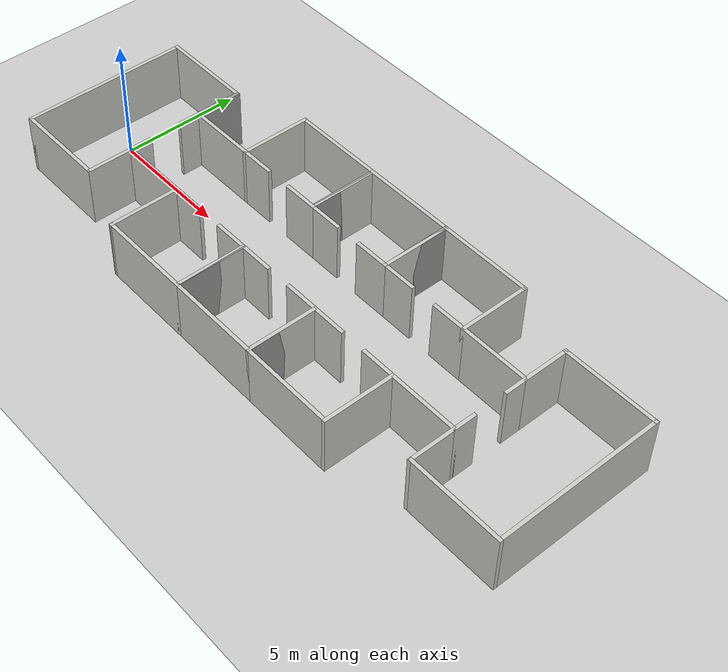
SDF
<sdf version="1.7">
 <world name="default">
  <light name="sun" type="directional">
   <pose>0 0 10 0 -0 0</pose>
   <diffuse>0.8 0.8 0.8 1</diffuse>
   <specular>0.2 0.2 0.2 1</specular>
   <attenuation>
    <range>1000</range>
    <constant>0.9</constant>
    <linear>0.01</linear>
    <quadratic>0.001</quadratic>
   </attenuation>
   <direction>-0.5 0.1 -0.9</direction>
   <spot><inner_angle>0</inner_angle><outer_angle>0</outer_angle><falloff>0</falloff></spot>
  </light>
  <model name="ground_plane">
   <static>1</static>
   <link name="link">
    <collision name="collision">
     <geometry><plane><normal>0 0 1</normal><size>100 100</size></plane></geometry>
     <surface>
      <contact><collide_bitmask>65535</collide_bitmask></contact>
      <friction><ode><mu>100</mu><mu2>50</mu2></ode></friction>
     </surface>
    </collision>
    <visual name="visual">
     <cast_shadows>0</cast_shadows>
     <geometry><plane><normal>0 0 1</normal><size>100 100</size></plane></geometry>
     <material>
      <script><uri>file://media/materials/scripts/gazebo.material</uri><name>Gazebo/Grey</name></script>
     </material>
    </visual>
   </link>
  </model>
  <gravity>0 0 -9.8</gravity>
  <magnetic_field>6e-06 2.3e-05 -4.2e-05</magnetic_field>
  <atmosphere type="adiabatic"/>
  <physics type="ode">
   <max_step_size>0.001</max_step_size>
   <real_time_factor>1</real_time_factor>
   <real_time_update_rate>1000</real_time_update_rate>
  </physics>
  <scene><ambient>0.4 0.4 0.4 1</ambient><background>0.7 0.7 0.7 1</background><shadows>1</shadows></scene>
  <spherical_coordinates>
   <surface_model>EARTH_WGS84</surface_model>
   <latitude_deg>0</latitude_deg>
   <longitude_deg>0</longitude_deg>
   <elevation>0</elevation>
   <heading_deg>0</heading_deg>
  </spherical_coordinates>
  <model name="FPSO_World_">
   <pose>10.9958 0.11858 0 0 -0 0</pose>
   <link name="Wall_10">
    <collision name="Wall_10_Collision">
     <geometry><box><size>4 0.15 2.5</size></box></geometry>
     <pose>0 0 1.25 0 -0 0</pose>
    </collision>
    <visual name="Wall_10_Visual">
     <pose>0 0 1.25 0 -0 0</pose>
     <geometry><box><size>4 0.15 2.5</size></box></geometry>
     <material>
      <script><uri>file://media/materials/scripts/gazebo.material</uri><name>Gazebo/CeilingTiled</name></script>
      <ambient>1 1 1 1</ambient>
     </material>
     <meta><layer>0</layer></meta>
    </visual>
    <pose>-10.55 -3.425 0 0 -0 0</pose>
   </link>
   <link name="Wall_11">
    <collision name="Wall_11_Collision">
     <geometry><box><size>2 0.15 2.5</size></box></geometry>
     <pose>0 0 1.25 0 -0 0</pose>
    </collision>
    <visual name="Wall_11_Visual">
     <pose>0 0 1.25 0 -0 0</pose>
     <geometry><box><size>2 0.15 2.5</size></box></geometry>
     <material>
      <script><uri>file://media/materials/scripts/gazebo.material</uri><name>Gazebo/CeilingTiled</name></script>
      <ambient>1 1 1 1</ambient>
     </material>
     <meta><layer>0</layer></meta>
    </visual>
    <pose>-8.625 -2.5 0 0 -0 1.5708</pose>
   </link>
   <link name="Wall_13">
    <collision name="Wall_13_Collision">
     <geometry><box><size>2 0.15 2.5</size></box></geometry>
     <pose>0 0 1.25 0 -0 0</pose>
    </collision>
    <visual name="Wall_13_Visual">
     <pose>0 0 1.25 0 -0 0</pose>
     <geometry><box><size>2 0.15 2.5</size></box></geometry>
     <material>
      <script><uri>file://media/materials/scripts/gazebo.material</uri><name>Gazebo/Grey</name></script>
      <ambient>1 1 1 1</ambient>
     </material>
     <meta><layer>0</layer></meta>
    </visual>
    <pose>-8.625 2.5 0 0 -0 -1.5708</pose>
   </link>
   <link name="Wall_14">
    <collision name="Wall_14_Collision">
     <geometry><box><size>3.00007 0.15 2.5</size></box></geometry>
     <pose>0 0 1.25 0 -0 0</pose>
    </collision>
    <visual name="Wall_14_Visual">
     <pose>0 0 1.25 0 -0 0</pose>
     <geometry><box><size>3.00007 0.15 2.5</size></box></geometry>
     <material>
      <script><uri>file://media/materials/scripts/gazebo.material</uri><name>Gazebo/CeilingTiled</name></script>
      <ambient>1 1 1 1</ambient>
     </material>
     <meta><layer>0</layer></meta>
    </visual>
    <pose>-7.2 1.575 0 0 -0 0</pose>
   </link>
   <link name="Wall_16">
    <collision name="Wall_16_Collision">
     <geometry><box><size>3 0.15 2.5</size></box></geometry>
     <pose>0 0 1.25 0 -0 0</pose>
    </collision>
    <visual name="Wall_16_Visual">
     <pose>0 0 1.25 0 -0 0</pose>
     <geometry><box><size>3 0.15 2.5</size></box></geometry>
     <material>
      <script><uri>file://media/materials/scripts/gazebo.material</uri><name>Gazebo/CeilingTiled</name></script>
      <ambient>1 1 1 1</ambient>
     </material>
     <meta><layer>0</layer></meta>
    </visual>
    <pose>-5.775 3 0 0 -0 1.5708</pose>
   </link>
   <link name="Wall_17">
    <collision name="Wall_17_Collision">
     <geometry><box><size>4 0.15 2.5</size></box></geometry>
     <pose>0 0 1.25 0 -0 0</pose>
    </collision>
    <visual name="Wall_17_Visual">
     <pose>0 0 1.25 0 -0 0</pose>
     <geometry><box><size>4 0.15 2.5</size></box></geometry>
     <material>
      <script><uri>file://media/materials/scripts/gazebo.material</uri><name>Gazebo/CeilingTiled</name></script>
      <ambient>1 1 1 1</ambient>
     </material>
     <meta><layer>0</layer></meta>
    </visual>
    <pose>-3.85 4.425 0 0 -0 0</pose>
   </link>
   <link name="Wall_18">
    <collision name="Wall_18_Collision">
     <geometry><box><size>3 0.15 2.5</size></box></geometry>
     <pose>0 0 1.25 0 -0 0</pose>
    </collision>
    <visual name="Wall_18_Visual">
     <pose>0 0 1.25 0 -0 0</pose>
     <geometry><box><size>3 0.15 2.5</size></box></geometry>
     <material>
      <script><uri>file://media/materials/scripts/gazebo.material</uri><name>Gazebo/CeilingTiled</name></script>
      <ambient>1 1 1 1</ambient>
     </material>
     <meta><layer>0</layer></meta>
    </visual>
    <pose>-1.925 3 0 0 -0 -1.5708</pose>
   </link>
   <link name="Wall_19">
    <collision name="Wall_19_Collision">
     <geometry><box><size>3 0.15 2.5</size></box></geometry>
     <pose>0 0 1.25 0 -0 0</pose>
    </collision>
    <visual name="Wall_19_Visual">
     <pose>0 0 1.25 0 -0 0</pose>
     <geometry><box><size>3 0.15 2.5</size></box></geometry>
     <material>
      <script><uri>file://media/materials/scripts/gazebo.material</uri><name>Gazebo/Grey</name></script>
      <ambient>1 1 1 1</ambient>
     </material>
     <meta><layer>0</layer></meta>
    </visual>
    <pose>-1.925 3 0 0 -0 1.5708</pose>
   </link>
   <link name="Wall_2">
    <collision name="Wall_2_Collision">
     <geometry><box><size>7 0.15 2.5</size></box></geometry>
     <pose>0 0 1.25 0 -0 0</pose>
    </collision>
    <visual name="Wall_2_Visual">
     <pose>0 0 1.25 0 -0 0</pose>
     <geometry><box><size>7 0.15 2.5</size></box></geometry>
     <material>
      <script><uri>file://media/materials/scripts/gazebo.material</uri><name>Gazebo/CeilingTiled</name></script>
      <ambient>1 1 1 1</ambient>
     </material>
     <meta><layer>0</layer></meta>
    </visual>
    <pose>-12.475 0 0 0 -0 1.5708</pose>
   </link>
   <link name="Wall_20">
    <collision name="Wall_20_Collision">
     <geometry><box><size>4 0.15 2.5</size></box></geometry>
     <pose>0 0 1.25 0 -0 0</pose>
    </collision>
    <visual name="Wall_20_Visual">
     <pose>0 0 1.25 0 -0 0</pose>
     <geometry><box><size>4 0.15 2.5</size></box></geometry>
     <material>
      <script><uri>file://media/materials/scripts/gazebo.material</uri><name>Gazebo/CeilingTiled</name></script>
      <ambient>1 1 1 1</ambient>
     </material>
     <meta><layer>0</layer></meta>
    </visual>
    <pose>0 4.425 0 0 -0 0</pose>
   </link>
   <link name="Wall_21">
    <collision name="Wall_21_Collision">
     <geometry><box><size>3 0.15 2.5</size></box></geometry>
     <pose>0 0 1.25 0 -0 0</pose>
    </collision>
    <visual name="Wall_21_Visual">
     <pose>0 0 1.25 0 -0 0</pose>
     <geometry><box><size>3 0.15 2.5</size></box></geometry>
     <material>
      <script><uri>file://media/materials/scripts/gazebo.material</uri><name>Gazebo/Grey</name></script>
      <ambient>1 1 1 1</ambient>
     </material>
     <meta><layer>0</layer></meta>
    </visual>
    <pose>1.925 3 0 0 -0 -1.5708</pose>
   </link>
   <link name="Wall_22">
    <collision name="Wall_22_Collision">
     <geometry><box><size>3 0.15 2.5</size></box></geometry>
     <pose>0 0 1.25 0 -0 0</pose>
    </collision>
    <visual name="Wall_22_Visual">
     <pose>0 0 1.25 0 -0 0</pose>
     <geometry><box><size>3 0.15 2.5</size></box></geometry>
     <material>
      <script><uri>file://media/materials/scripts/gazebo.material</uri><name>Gazebo/CeilingTiled</name></script>
      <ambient>1 1 1 1</ambient>
     </material>
     <meta><layer>0</layer></meta>
    </visual>
    <pose>1.925 3 0 0 -0 1.5708</pose>
   </link>
   <link name="Wall_23">
    <collision name="Wall_23_Collision">
     <geometry><box><size>4 0.15 2.5</size></box></geometry>
     <pose>0 0 1.25 0 -0 0</pose>
    </collision>
    <visual name="Wall_23_Visual">
     <pose>0 0 1.25 0 -0 0</pose>
     <geometry><box><size>4 0.15 2.5</size></box></geometry>
     <material>
      <script><uri>file://media/materials/scripts/gazebo.material</uri><name>Gazebo/CeilingTiled</name></script>
      <ambient>1 1 1 1</ambient>
     </material>
     <meta><layer>0</layer></meta>
    </visual>
    <pose>3.85 4.425 0 0 -0 0</pose>
   </link>
   <link name="Wall_24">
    <collision name="Wall_24_Collision">
     <geometry><box><size>3 0.15 2.5</size></box></geometry>
     <pose>0 0 1.25 0 -0 0</pose>
    </collision>
    <visual name="Wall_24_Visual">
     <pose>0 0 1.25 0 -0 0</pose>
     <geometry><box><size>3 0.15 2.5</size></box></geometry>
     <material>
      <script><uri>file://media/materials/scripts/gazebo.material</uri><name>Gazebo/CeilingTiled</name></script>
      <ambient>1 1 1 1</ambient>
     </material>
     <meta><layer>0</layer></meta>
    </visual>
    <pose>5.775 3 0 0 -0 -1.5708</pose>
   </link>
   <link name="Wall_26">
    <collision name="Wall_26_Collision">
     <geometry><box><size>3 0.15 2.5</size></box></geometry>
     <pose>0 0 1.25 0 -0 0</pose>
    </collision>
    <visual name="Wall_26_Visual">
     <pose>0 0 1.25 0 -0 0</pose>
     <geometry><box><size>3 0.15 2.5</size></box></geometry>
     <material>
      <script><uri>file://media/materials/scripts/gazebo.material</uri><name>Gazebo/CeilingTiled</name></script>
      <ambient>1 1 1 1</ambient>
     </material>
     <meta><layer>0</layer></meta>
    </visual>
    <pose>-7.2 -1.575 0 0 -0 0</pose>
   </link>
   <link name="Wall_27">
    <collision name="Wall_27_Collision">
     <geometry><box><size>3 0.15 2.5</size></box></geometry>
     <pose>0 0 1.25 0 -0 0</pose>
    </collision>
    <visual name="Wall_27_Visual">
     <pose>0 0 1.25 0 -0 0</pose>
     <geometry><box><size>3 0.15 2.5</size></box></geometry>
     <material>
      <script><uri>file://media/materials/scripts/gazebo.material</uri><name>Gazebo/CeilingTiled</name></script>
      <ambient>1 1 1 1</ambient>
     </material>
     <meta><layer>0</layer></meta>
    </visual>
    <pose>-5.775 -3 0 0 -0 -1.5708</pose>
   </link>
   <link name="Wall_28">
    <collision name="Wall_28_Collision">
     <geometry><box><size>4 0.15 2.5</size></box></geometry>
     <pose>0 0 1.25 0 -0 0</pose>
    </collision>
    <visual name="Wall_28_Visual">
     <pose>0 0 1.25 0 -0 0</pose>
     <geometry><box><size>4 0.15 2.5</size></box></geometry>
     <material>
      <script><uri>file://media/materials/scripts/gazebo.material</uri><name>Gazebo/CeilingTiled</name></script>
      <ambient>1 1 1 1</ambient>
     </material>
     <meta><layer>0</layer></meta>
    </visual>
    <pose>-3.85 -4.425 0 0 -0 0</pose>
   </link>
   <link name="Wall_29">
    <collision name="Wall_29_Collision">
     <geometry><box><size>3 0.15 2.5</size></box></geometry>
     <pose>0 0 1.25 0 -0 0</pose>
    </collision>
    <visual name="Wall_29_Visual">
     <pose>0 0 1.25 0 -0 0</pose>
     <geometry><box><size>3 0.15 2.5</size></box></geometry>
     <material>
      <script><uri>file://media/materials/scripts/gazebo.material</uri><name>Gazebo/Grey</name></script>
      <ambient>1 1 1 1</ambient>
     </material>
     <meta><layer>0</layer></meta>
    </visual>
    <pose>-1.925 -3 0 0 -0 1.5708</pose>
   </link>
   <link name="Wall_3">
    <collision name="Wall_3_Collision">
     <geometry><box><size>4 0.15 2.5</size></box></geometry>
     <pose>0 0 1.25 0 -0 0</pose>
    </collision>
    <visual name="Wall_3_Visual">
     <pose>0 0 1.25 0 -0 0</pose>
     <geometry><box><size>4 0.15 2.5</size></box></geometry>
     <material>
      <script><uri>file://media/materials/scripts/gazebo.material</uri><name>Gazebo/CeilingTiled</name></script>
      <ambient>1 1 1 1</ambient>
     </material>
     <meta><layer>0</layer></meta>
    </visual>
    <pose>-10.55 3.425 0 0 -0 0</pose>
   </link>
   <link name="Wall_31">
    <collision name="Wall_31_Collision">
     <geometry><box><size>3 0.15 2.5</size></box></geometry>
     <pose>0 0 1.25 0 -0 0</pose>
    </collision>
    <visual name="Wall_31_Visual">
     <pose>0 0 1.25 0 -0 0</pose>
     <geometry><box><size>3 0.15 2.5</size></box></geometry>
     <material>
      <script><uri>file://media/materials/scripts/gazebo.material</uri><name>Gazebo/CeilingTiled</name></script>
      <ambient>1 1 1 1</ambient>
     </material>
     <meta><layer>0</layer></meta>
    </visual>
    <pose>-1.925 -3 0 0 -0 -1.5708</pose>
   </link>
   <link name="Wall_32">
    <collision name="Wall_32_Collision">
     <geometry><box><size>4 0.15 2.5</size></box></geometry>
     <pose>0 0 1.25 0 -0 0</pose>
    </collision>
    <visual name="Wall_32_Visual">
     <pose>0 0 1.25 0 -0 0</pose>
     <geometry><box><size>4 0.15 2.5</size></box></geometry>
     <material>
      <script><uri>file://media/materials/scripts/gazebo.material</uri><name>Gazebo/CeilingTiled</name></script>
      <ambient>1 1 1 1</ambient>
     </material>
     <meta><layer>0</layer></meta>
    </visual>
    <pose>0 -4.425 0 0 -0 0</pose>
   </link>
   <link name="Wall_33">
    <collision name="Wall_33_Collision">
     <geometry><box><size>3 0.15 2.5</size></box></geometry>
     <pose>0 0 1.25 0 -0 0</pose>
    </collision>
    <visual name="Wall_33_Visual">
     <pose>0 0 1.25 0 -0 0</pose>
     <geometry><box><size>3 0.15 2.5</size></box></geometry>
     <material>
      <script><uri>file://media/materials/scripts/gazebo.material</uri><name>Gazebo/Grey</name></script>
      <ambient>1 1 1 1</ambient>
     </material>
     <meta><layer>0</layer></meta>
    </visual>
    <pose>1.925 -3 0 0 -0 1.5708</pose>
   </link>
   <link name="Wall_34">
    <collision name="Wall_34_Collision">
     <geometry><box><size>3 0.15 2.5</size></box></geometry>
     <pose>0 0 1.25 0 -0 0</pose>
    </collision>
    <visual name="Wall_34_Visual">
     <pose>0 0 1.25 0 -0 0</pose>
     <geometry><box><size>3 0.15 2.5</size></box></geometry>
     <material>
      <script><uri>file://media/materials/scripts/gazebo.material</uri><name>Gazebo/CeilingTiled</name></script>
      <ambient>1 1 1 1</ambient>
     </material>
     <meta><layer>0</layer></meta>
    </visual>
    <pose>1.925 -3 0 0 -0 -1.5708</pose>
   </link>
   <link name="Wall_35">
    <collision name="Wall_35_Collision">
     <geometry><box><size>4 0.15 2.5</size></box></geometry>
     <pose>0 0 1.25 0 -0 0</pose>
    </collision>
    <visual name="Wall_35_Visual">
     <pose>0 0 1.25 0 -0 0</pose>
     <geometry><box><size>4 0.15 2.5</size></box></geometry>
     <material>
      <script><uri>file://media/materials/scripts/gazebo.material</uri><name>Gazebo/CeilingTiled</name></script>
      <ambient>1 1 1 1</ambient>
     </material>
     <meta><layer>0</layer></meta>
    </visual>
    <pose>3.85 -4.425 0 0 -0 0</pose>
   </link>
   <link name="Wall_36">
    <collision name="Wall_36_Collision">
     <geometry><box><size>3 0.15 2.5</size></box></geometry>
     <pose>0 0 1.25 0 -0 0</pose>
    </collision>
    <visual name="Wall_36_Visual">
     <pose>0 0 1.25 0 -0 0</pose>
     <geometry><box><size>3 0.15 2.5</size></box></geometry>
     <material>
      <script><uri>file://media/materials/scripts/gazebo.material</uri><name>Gazebo/CeilingTiled</name></script>
      <ambient>1 1 1 1</ambient>
     </material>
     <meta><layer>0</layer></meta>
    </visual>
    <pose>5.775 -3 0 0 -0 1.5708</pose>
   </link>
   <link name="Wall_39">
    <collision name="Wall_39_Collision">
     <geometry><box><size>3 0.15 2.5</size></box></geometry>
     <pose>0 0 1.25 0 -0 0</pose>
    </collision>
    <visual name="Wall_39_Visual">
     <pose>0 0 1.25 0 -0 0</pose>
     <geometry><box><size>3 0.15 2.5</size></box></geometry>
     <material>
      <script><uri>file://media/materials/scripts/gazebo.material</uri><name>Gazebo/CeilingTiled</name></script>
      <ambient>1 1 1 1</ambient>
     </material>
     <meta><layer>0</layer></meta>
    </visual>
    <pose>7.2 1.575 0 0 -0 0</pose>
   </link>
   <link name="Wall_41">
    <collision name="Wall_41_Collision">
     <geometry><box><size>2 0.15 2.5</size></box></geometry>
     <pose>0 0 1.25 0 -0 0</pose>
    </collision>
    <visual name="Wall_41_Visual">
     <pose>0 0 1.25 0 -0 0</pose>
     <geometry><box><size>2 0.15 2.5</size></box></geometry>
     <material>
      <script><uri>file://media/materials/scripts/gazebo.material</uri><name>Gazebo/CeilingTiled</name></script>
      <ambient>1 1 1 1</ambient>
     </material>
     <meta><layer>0</layer></meta>
    </visual>
    <pose>8.625 2.5 0 0 -0 1.5708</pose>
   </link>
   <link name="Wall_43">
    <collision name="Wall_43_Collision">
     <geometry><box><size>4 0.15 2.5</size></box></geometry>
     <pose>0 0 1.25 0 -0 0</pose>
    </collision>
    <visual name="Wall_43_Visual">
     <pose>0 0 1.25 0 -0 0</pose>
     <geometry><box><size>4 0.15 2.5</size></box></geometry>
     <material>
      <script><uri>file://media/materials/scripts/gazebo.material</uri><name>Gazebo/CeilingTiled</name></script>
      <ambient>1 1 1 1</ambient>
     </material>
     <meta><layer>0</layer></meta>
    </visual>
    <pose>10.55 3.425 0 0 -0 0</pose>
   </link>
   <link name="Wall_44">
    <collision name="Wall_44_Collision">
     <geometry><box><size>7 0.15 2.5</size></box></geometry>
     <pose>0 0 1.25 0 -0 0</pose>
    </collision>
    <visual name="Wall_44_Visual">
     <pose>0 0 1.25 0 -0 0</pose>
     <geometry><box><size>7 0.15 2.5</size></box></geometry>
     <material>
      <script><uri>file://media/materials/scripts/gazebo.material</uri><name>Gazebo/CeilingTiled</name></script>
      <ambient>1 1 1 1</ambient>
     </material>
     <meta><layer>0</layer></meta>
    </visual>
    <pose>12.475 0 0 0 -0 -1.5708</pose>
   </link>
   <link name="Wall_45">
    <collision name="Wall_45_Collision">
     <geometry><box><size>4 0.15 2.5</size></box></geometry>
     <pose>0 0 1.25 0 -0 0</pose>
    </collision>
    <visual name="Wall_45_Visual">
     <pose>0 0 1.25 0 -0 0</pose>
     <geometry><box><size>4 0.15 2.5</size></box></geometry>
     <material>
      <script><uri>file://media/materials/scripts/gazebo.material</uri><name>Gazebo/CeilingTiled</name></script>
      <ambient>1 1 1 1</ambient>
     </material>
     <meta><layer>0</layer></meta>
    </visual>
    <pose>10.55 -3.425 0 0 -0 3.14159</pose>
   </link>
   <link name="Wall_46">
    <collision name="Wall_46_Collision">
     <geometry><box><size>2 0.15 2.5</size></box></geometry>
     <pose>0 0 1.25 0 -0 0</pose>
    </collision>
    <visual name="Wall_46_Visual">
     <pose>0 0 1.25 0 -0 0</pose>
     <geometry><box><size>2 0.15 2.5</size></box></geometry>
     <material>
      <script><uri>file://media/materials/scripts/gazebo.material</uri><name>Gazebo/CeilingTiled</name></script>
      <ambient>1 1 1 1</ambient>
     </material>
     <meta><layer>0</layer></meta>
    </visual>
    <pose>8.625 -2.5 0 0 -0 1.5708</pose>
   </link>
   <link name="Wall_47">
    <collision name="Wall_47_Collision">
     <geometry><box><size>3 0.15 2.5</size></box></geometry>
     <pose>0 0 1.25 0 -0 0</pose>
    </collision>
    <visual name="Wall_47_Visual">
     <pose>0 0 1.25 0 -0 0</pose>
     <geometry><box><size>3 0.15 2.5</size></box></geometry>
     <material>
      <script><uri>file://media/materials/scripts/gazebo.material</uri><name>Gazebo/CeilingTiled</name></script>
      <ambient>1 1 1 1</ambient>
     </material>
     <meta><layer>0</layer></meta>
    </visual>
    <pose>7.2 -1.575 0 0 -0 3.14159</pose>
   </link>
   <link name="Wall_49">
    <collision name="Wall_49_Collision">
     <geometry><box><size>1.5 0.15 2.5</size></box></geometry>
     <pose>0 0 1.25 0 -0 0</pose>
    </collision>
    <visual name="Wall_49_Visual">
     <pose>0 0 1.25 0 -0 0</pose>
     <geometry><box><size>1.5 0.15 2.5</size></box></geometry>
     <material>
      <script><uri>file://media/materials/scripts/gazebo.material</uri><name>Gazebo/CeilingTiled</name></script>
      <ambient>1 1 1 1</ambient>
     </material>
     <meta><layer>0</layer></meta>
    </visual>
    <pose>-5.1 1.575 0 0 -0 0</pose>
   </link>
   <link name="Wall_52">
    <collision name="Wall_52_Collision">
     <geometry><box><size>1.5 0.15 2.5</size></box></geometry>
     <pose>0 0 1.25 0 -0 0</pose>
    </collision>
    <visual name="Wall_52_Visual">
     <pose>0 0 1.25 0 -0 0</pose>
     <geometry><box><size>1.5 0.15 2.5</size></box></geometry>
     <material>
      <script><uri>file://media/materials/scripts/gazebo.material</uri><name>Gazebo/CeilingTiled</name></script>
      <ambient>1 1 1 1</ambient>
     </material>
     <meta><layer>0</layer></meta>
    </visual>
    <pose>-2.6 1.575 0 0 -0 3.14159</pose>
   </link>
   <link name="Wall_54">
    <collision name="Wall_54_Collision">
     <geometry><box><size>1.5 0.15 2.5</size></box></geometry>
     <pose>0 0 1.25 0 -0 0</pose>
    </collision>
    <visual name="Wall_54_Visual">
     <pose>0 0 1.25 0 -0 0</pose>
     <geometry><box><size>1.5 0.15 2.5</size></box></geometry>
     <material>
      <script><uri>file://media/materials/scripts/gazebo.material</uri><name>Gazebo/CeilingTiled</name></script>
      <ambient>1 1 1 1</ambient>
     </material>
     <meta><layer>0</layer></meta>
    </visual>
    <pose>-5.1 -1.575 0 0 -0 0</pose>
   </link>
   <link name="Wall_56">
    <collision name="Wall_56_Collision">
     <geometry><box><size>1.5 0.15 2.5</size></box></geometry>
     <pose>0 0 1.25 0 -0 0</pose>
    </collision>
    <visual name="Wall_56_Visual">
     <pose>0 0 1.25 0 -0 0</pose>
     <geometry><box><size>1.5 0.15 2.5</size></box></geometry>
     <material>
      <script><uri>file://media/materials/scripts/gazebo.material</uri><name>Gazebo/CeilingTiled</name></script>
      <ambient>1 1 1 1</ambient>
     </material>
     <meta><layer>0</layer></meta>
    </visual>
    <pose>-2.6 -1.575 0 0 -0 3.14159</pose>
   </link>
   <link name="Wall_58">
    <collision name="Wall_58_Collision">
     <geometry><box><size>1.5 0.15 2.5</size></box></geometry>
     <pose>0 0 1.25 0 -0 0</pose>
    </collision>
    <visual name="Wall_58_Visual">
     <pose>0 0 1.25 0 -0 0</pose>
     <geometry><box><size>1.5 0.15 2.5</size></box></geometry>
     <material>
      <script><uri>file://media/materials/scripts/gazebo.material</uri><name>Gazebo/CeilingTiled</name></script>
      <ambient>1 1 1 1</ambient>
     </material>
     <meta><layer>0</layer></meta>
    </visual>
    <pose>-1.25 1.575 0 0 -0 0</pose>
   </link>
   <link name="Wall_60">
    <collision name="Wall_60_Collision">
     <geometry><box><size>1.5 0.15 2.5</size></box></geometry>
     <pose>0 0 1.25 0 -0 0</pose>
    </collision>
    <visual name="Wall_60_Visual">
     <pose>0 0 1.25 0 -0 0</pose>
     <geometry><box><size>1.5 0.15 2.5</size></box></geometry>
     <material>
      <script><uri>file://media/materials/scripts/gazebo.material</uri><name>Gazebo/CeilingTiled</name></script>
      <ambient>1 1 1 1</ambient>
     </material>
     <meta><layer>0</layer></meta>
    </visual>
    <pose>1.25 1.575 0 0 -0 3.14159</pose>
   </link>
   <link name="Wall_62">
    <collision name="Wall_62_Collision">
     <geometry><box><size>1.5 0.15 2.5</size></box></geometry>
     <pose>0 0 1.25 0 -0 0</pose>
    </collision>
    <visual name="Wall_62_Visual">
     <pose>0 0 1.25 0 -0 0</pose>
     <geometry><box><size>1.5 0.15 2.5</size></box></geometry>
     <material>
      <script><uri>file://media/materials/scripts/gazebo.material</uri><name>Gazebo/CeilingTiled</name></script>
      <ambient>1 1 1 1</ambient>
     </material>
     <meta><layer>0</layer></meta>
    </visual>
    <pose>-1.25 -1.575 0 0 -0 0</pose>
   </link>
   <link name="Wall_64">
    <collision name="Wall_64_Collision">
     <geometry><box><size>1.5 0.15 2.5</size></box></geometry>
     <pose>0 0 1.25 0 -0 0</pose>
    </collision>
    <visual name="Wall_64_Visual">
     <pose>0 0 1.25 0 -0 0</pose>
     <geometry><box><size>1.5 0.15 2.5</size></box></geometry>
     <material>
      <script><uri>file://media/materials/scripts/gazebo.material</uri><name>Gazebo/CeilingTiled</name></script>
      <ambient>1 1 1 1</ambient>
     </material>
     <meta><layer>0</layer></meta>
    </visual>
    <pose>1.25 -1.575 0 0 -0 3.14159</pose>
   </link>
   <link name="Wall_66">
    <collision name="Wall_66_Collision">
     <geometry><box><size>1.5 0.15 2.5</size></box></geometry>
     <pose>0 0 1.25 0 -0 0</pose>
    </collision>
    <visual name="Wall_66_Visual">
     <pose>0 0 1.25 0 -0 0</pose>
     <geometry><box><size>1.5 0.15 2.5</size></box></geometry>
     <material>
      <script><uri>file://media/materials/scripts/gazebo.material</uri><name>Gazebo/CeilingTiled</name></script>
      <ambient>1 1 1 1</ambient>
     </material>
     <meta><layer>0</layer></meta>
    </visual>
    <pose>2.6 1.575 0 0 -0 0</pose>
   </link>
   <link name="Wall_68">
    <collision name="Wall_68_Collision">
     <geometry><box><size>1.5 0.15 2.5</size></box></geometry>
     <pose>0 0 1.25 0 -0 0</pose>
    </collision>
    <visual name="Wall_68_Visual">
     <pose>0 0 1.25 0 -0 0</pose>
     <geometry><box><size>1.5 0.15 2.5</size></box></geometry>
     <material>
      <script><uri>file://media/materials/scripts/gazebo.material</uri><name>Gazebo/CeilingTiled</name></script>
      <ambient>1 1 1 1</ambient>
     </material>
     <meta><layer>0</layer></meta>
    </visual>
    <pose>5.1 1.575 0 0 -0 3.14159</pose>
   </link>
   <link name="Wall_70">
    <collision name="Wall_70_Collision">
     <geometry><box><size>1.5 0.15 2.5</size></box></geometry>
     <pose>0 0 1.25 0 -0 0</pose>
    </collision>
    <visual name="Wall_70_Visual">
     <pose>0 0 1.25 0 -0 0</pose>
     <geometry><box><size>1.5 0.15 2.5</size></box></geometry>
     <material>
      <script><uri>file://media/materials/scripts/gazebo.material</uri><name>Gazebo/CeilingTiled</name></script>
      <ambient>1 1 1 1</ambient>
     </material>
     <meta><layer>0</layer></meta>
    </visual>
    <pose>2.6 -1.575 0 0 -0 0</pose>
   </link>
   <link name="Wall_72">
    <collision name="Wall_72_Collision">
     <geometry><box><size>1.5 0.15 2.5</size></box></geometry>
     <pose>0 0 1.25 0 -0 0</pose>
    </collision>
    <visual name="Wall_72_Visual">
     <pose>0 0 1.25 0 -0 0</pose>
     <geometry><box><size>1.5 0.15 2.5</size></box></geometry>
     <material>
      <script><uri>file://media/materials/scripts/gazebo.material</uri><name>Gazebo/CeilingTiled</name></script>
      <ambient>1 1 1 1</ambient>
     </material>
     <meta><layer>0</layer></meta>
    </visual>
    <pose>5.1 -1.575 0 0 -0 3.14159</pose>
   </link>
   <link name="Wall_74">
    <collision name="Wall_74_Collision">
     <geometry><box><size>1 0.15 2.5</size></box></geometry>
     <pose>0 0 1.25 0 -0 0</pose>
    </collision>
    <visual name="Wall_74_Visual">
     <pose>0 0 1.25 0 -0 0</pose>
     <geometry><box><size>1 0.15 2.5</size></box></geometry>
     <material>
      <script><uri>file://media/materials/scripts/gazebo.material</uri><name>Gazebo/CeilingTiled</name></script>
      <ambient>1 1 1 1</ambient>
     </material>
     <meta><layer>0</layer></meta>
    </visual>
    <pose>-8.625 1.15 0 0 -0 -1.5708</pose>
   </link>
   <link name="Wall_76">
    <collision name="Wall_76_Collision">
     <geometry><box><size>1 0.15 2.5</size></box></geometry>
     <pose>0 0 1.25 0 -0 0</pose>
    </collision>
    <visual name="Wall_76_Visual">
     <pose>0 0 1.25 0 -0 0</pose>
     <geometry><box><size>1 0.15 2.5</size></box></geometry>
     <material>
      <script><uri>file://media/materials/scripts/gazebo.material</uri><name>Gazebo/CeilingTiled</name></script>
      <ambient>1 1 1 1</ambient>
     </material>
     <meta><layer>0</layer></meta>
    </visual>
    <pose>-8.625 -1.15 0 0 -0 1.5708</pose>
   </link>
   <link name="Wall_83">
    <collision name="Wall_83_Collision">
     <geometry><box><size>1 0.15 2.5</size></box></geometry>
     <pose>0 0 1.25 0 -0 0</pose>
    </collision>
    <visual name="Wall_83_Visual">
     <pose>0 0 1.25 0 -0 0</pose>
     <geometry><box><size>1 0.15 2.5</size></box></geometry>
     <material>
      <script><uri>file://media/materials/scripts/gazebo.material</uri><name>Gazebo/CeilingTiled</name></script>
      <ambient>1 1 1 1</ambient>
     </material>
     <meta><layer>0</layer></meta>
    </visual>
    <pose>8.625 1.15 0 0 -0 -1.5708</pose>
   </link>
   <link name="Wall_85">
    <collision name="Wall_85_Collision">
     <geometry><box><size>1 0.15 2.5</size></box></geometry>
     <pose>0 0 1.25 0 -0 0</pose>
    </collision>
    <visual name="Wall_85_Visual">
     <pose>0 0 1.25 0 -0 0</pose>
     <geometry><box><size>1 0.15 2.5</size></box></geometry>
     <material>
      <script><uri>file://media/materials/scripts/gazebo.material</uri><name>Gazebo/CeilingTiled</name></script>
      <ambient>1 1 1 1</ambient>
     </material>
     <meta><layer>0</layer></meta>
    </visual>
    <pose>8.625 -1.15 0 0 -0 1.5708</pose>
   </link>
   <static>1</static>
  </model>
  <model name="gas">
   <static>1</static>
   <frame name="artifact_proximity_detector::__model__" attached_to="artifact_proximity_detector::">
    <pose relative_to="__model__">0 0 0 0 -0 0</pose>
   </frame>
   <static>1</static>
   <plugin name="ignition::gazebo::systems::PerformerDetector" filename="libignition-gazebo-performer-detector-system.so">
    <topic>/subt_performer_detector</topic>
    <header_data><key>type</key><value>artifact_proximity</value></header_data>
    <geometry><box><size>10 10 10</size></box></geometry>
   </plugin>
   <plugin name="subt::GasEmitter" filename="libGasEmitterDetectorPlugin.so">
    <emitter>
     <type>gas</type>
     <pose>-1.5 10 2.5 0 0 0</pose>
     <geometry><box><size>15.0 20.0 5.0</size></box></geometry>
    </emitter>
   </plugin>
  </model>
 </world>
</sdf>
